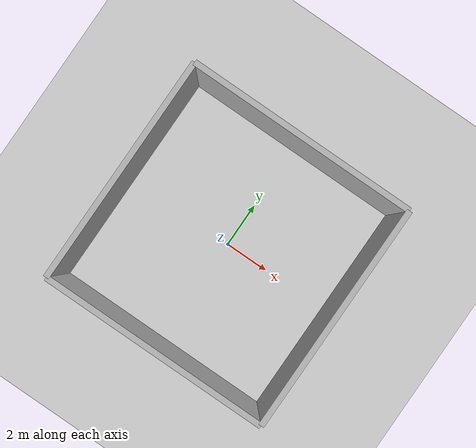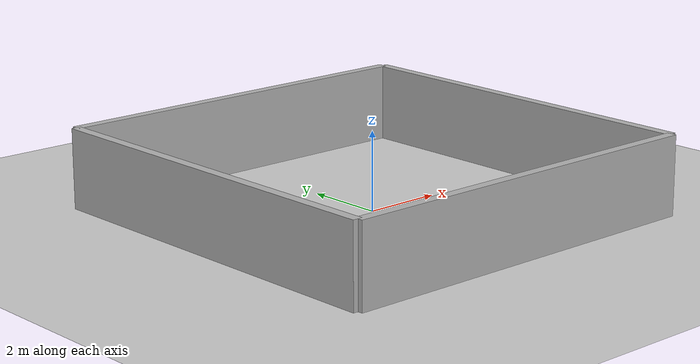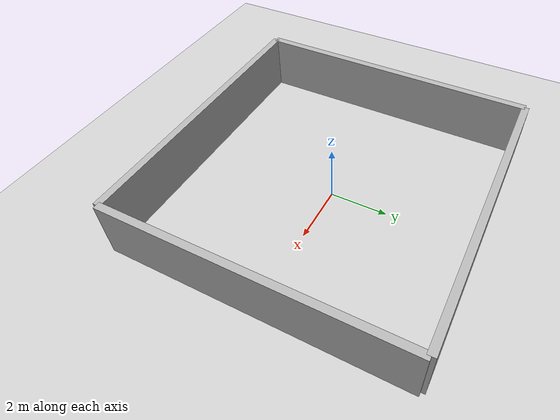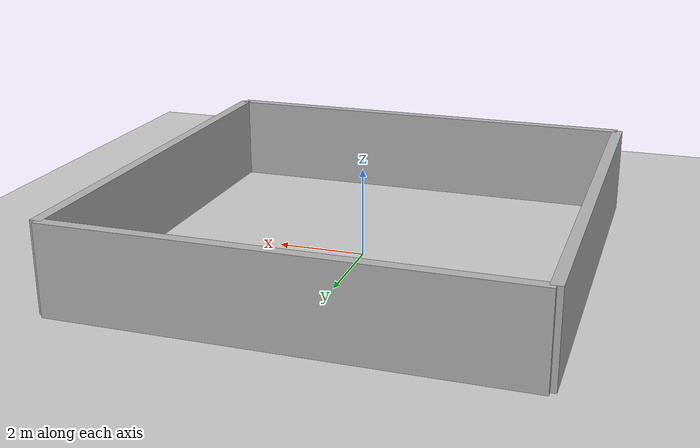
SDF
<?xml version="1.0"?>
<sdf version="1.8">
  <world name="simple">
    <physics name="1ms" type="ignored">
      <max_step_size>0.001</max_step_size>
      <real_time_factor>1.0</real_time_factor>
    </physics>

    <plugin
      filename="gz-sim-physics-system"
      name="gz::sim::systems::Physics">
    </plugin>
    <plugin
        filename="gz-sim-sensors-system"
        name="gz::sim::systems::Sensors">
    </plugin>
    <plugin
      filename="gz-sim-scene-broadcaster-system"
      name="gz::sim::systems::SceneBroadcaster">
    </plugin>
    <plugin
      filename="gz-sim-user-commands-system"
      name="gz::sim::systems::UserCommands">
    </plugin>

    <light name="sun" type="directional">
      <cast_shadows>true</cast_shadows>
      <pose>0 0 10 0 0 0</pose>
      <diffuse>0.8 0.8 0.8 1</diffuse>
      <specular>0.2 0.2 0.2 1</specular>
      <attenuation>
        <range>1000</range>
        <constant>0.9</constant>
        <linear>0.01</linear>
        <quadratic>0.001</quadratic>
      </attenuation>
      <direction>-0.5 0.1 -0.9</direction>
    </light>

    <model name="ground_plane">
      <static>true</static>
      <link name="link">
        <collision name="collision">
          <geometry>
            <plane>
              <normal>0 0 1</normal>
              <size>100 100</size>
            </plane>
          </geometry>
          <surface>
            <friction>
              <ode>
                <mu>50</mu>
              </ode>
              <bullet>
                <friction>1</friction>
                <friction2>1</friction2>
                <rolling_friction>0.1</rolling_friction>
              </bullet>
            </friction>
          </surface>
        </collision>
        <visual name="visual">
          <geometry>
            <plane>
              <normal>0 0 1</normal>
              <size>100 100</size>
            </plane>
          </geometry>
          <material>
            <ambient>0.8 0.8 0.8 1</ambient>
            <diffuse>0.8 0.8 0.8 1</diffuse>
            <specular>0.8 0.8 0.8 1</specular>
          </material>
        </visual>
      </link>
    </model>

    <model name="wall 1">
        <static>true</static> <!-- Makes the wall immovable -->
        <link name="wall_link">
        <collision name="collision">
            <geometry>
            <box>
                <!-- Define the wall dimensions: width, depth, and height -->
                <size>10 0.25 2.0</size>
            </box>
            </geometry>
        </collision>
        <visual name="visual">
            <geometry>
            <box>
                <size>10 0.25 2.0</size>
            </box>
            </geometry>
            <material>
            <ambient>0.5 0.5 0.5 1</ambient>
            <diffuse>0.7 0.7 0.7 1</diffuse>
            <specular>0.3 0.3 0.3 1</specular>
            </material>
        </visual>
        <!-- Position the wall within the world -->
        <pose>5 0 1 0 0 1.57</pose> <!-- Adjust as needed -->
        </link>
    </model>

    <model name="wall 2">
        <static>true</static> <!-- Makes the wall immovable -->
        <link name="wall_link">
        <collision name="collision">
            <geometry>
            <box>
                <!-- Define the wall dimensions: width, depth, and height -->
                <size>10 0.25 2.0</size>
            </box>
            </geometry>
        </collision>
        <visual name="visual">
            <geometry>
            <box>
                <size>10 0.25 2.0</size>
            </box>
            </geometry>
            <material>
            <ambient>0.5 0.5 0.5 1</ambient>
            <diffuse>0.7 0.7 0.7 1</diffuse>
            <specular>0.3 0.3 0.3 1</specular>
            </material>
        </visual>
        <!-- Position the wall within the world -->
        <pose>0 5 1 0 0 0.0</pose> <!-- Adjust as needed -->
        </link>
    </model>

    <model name="wall 3">
        <static>true</static> <!-- Makes the wall immovable -->
        <link name="wall_link">
        <collision name="collision">
            <geometry>
            <box>
                <!-- Define the wall dimensions: width, depth, and height -->
                <size>10 0.25 2.0</size>
            </box>
            </geometry>
        </collision>
        <visual name="visual">
            <geometry>
            <box>
                <size>10 0.25 2.0</size>
            </box>
            </geometry>
            <material>
            <ambient>0.5 0.5 0.5 1</ambient>
            <diffuse>0.7 0.7 0.7 1</diffuse>
            <specular>0.3 0.3 0.3 1</specular>
            </material>
        </visual>
        <!-- Position the wall within the world -->
        <pose>-5 0 1 0 0 1.57</pose> <!-- Adjust as needed -->
        </link>
    </model>

    <model name="wall 4">
        <static>true</static> <!-- Makes the wall immovable -->
        <link name="wall_link">
        <collision name="collision">
            <geometry>
            <box>
                <!-- Define the wall dimensions: width, depth, and height -->
                <size>10 0.25 2.0</size>
            </box>
            </geometry>
        </collision>
        <visual name="visual">
            <geometry>
            <box>
                <size>10 0.25 2.0</size>
            </box>
            </geometry>
            <material>
            <ambient>0.5 0.5 0.5 1</ambient>
            <diffuse>0.7 0.7 0.7 1</diffuse>
            <specular>0.3 0.3 0.3 1</specular>
            </material>
        </visual>
        <!-- Position the wall within the world -->
        <pose>0 -5 1 0 0 0.0</pose> <!-- Adjust as needed -->
        </link>
    </model>

  </world>
</sdf>
